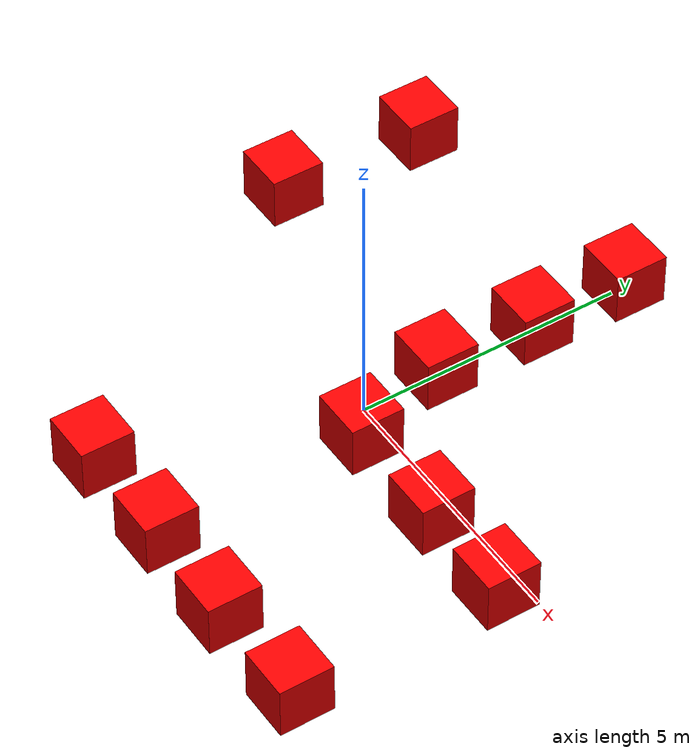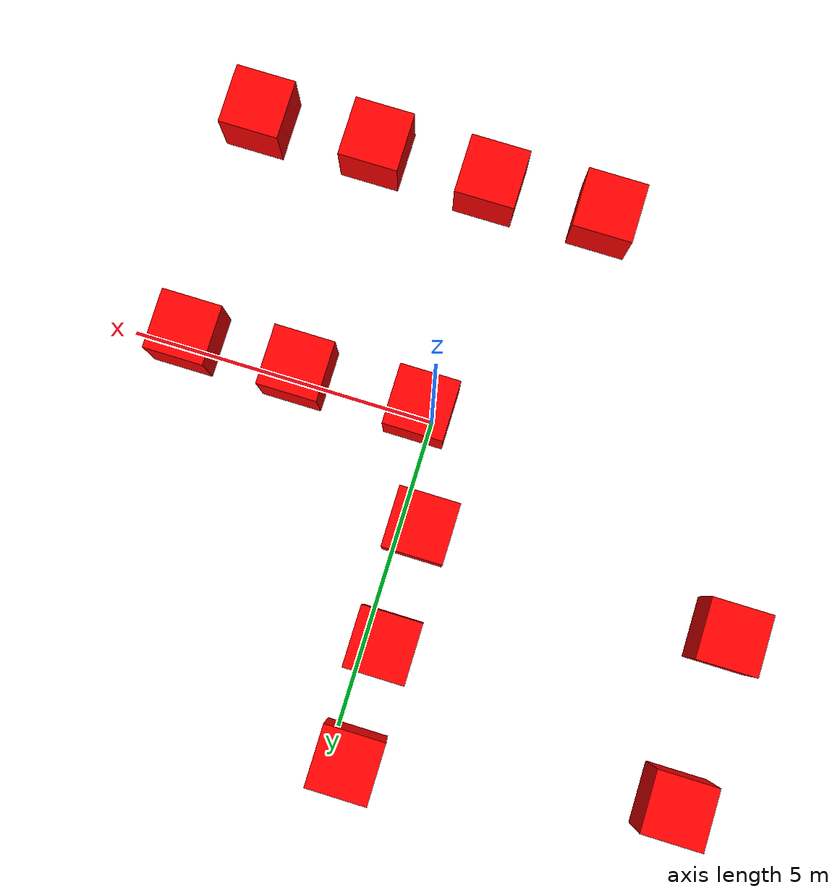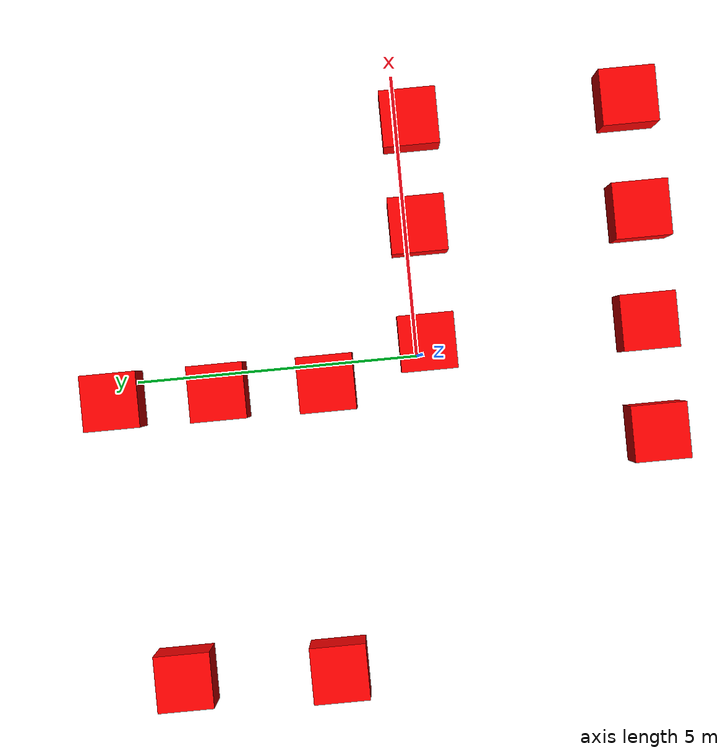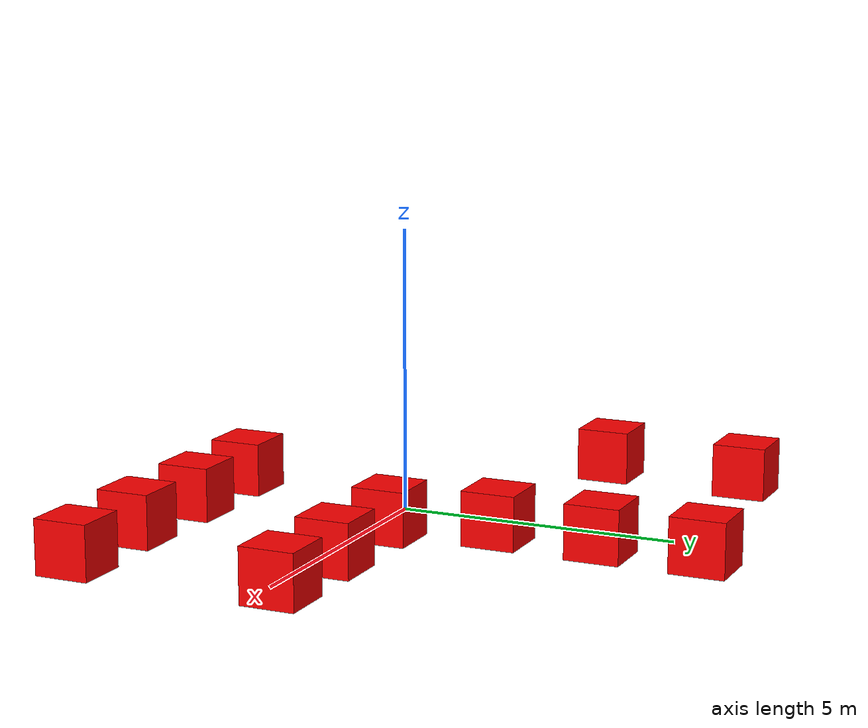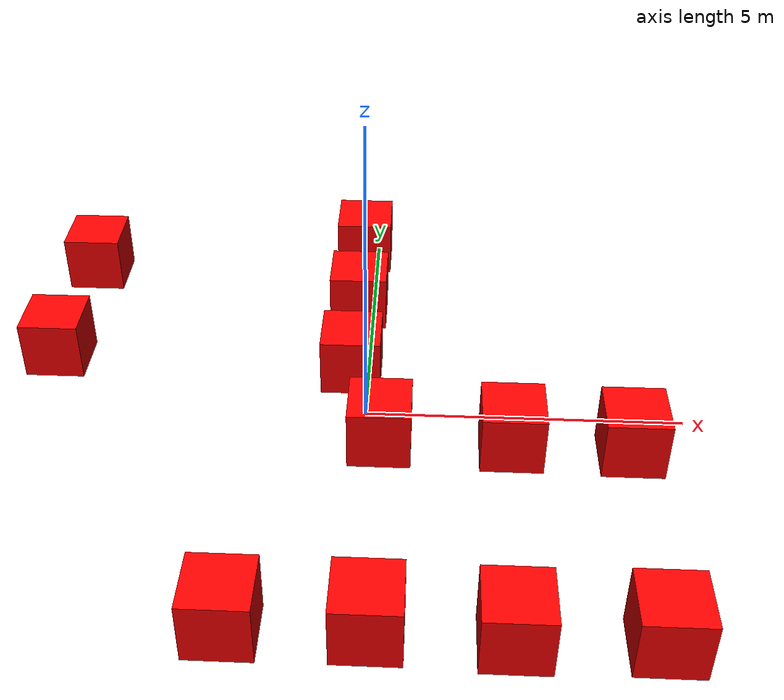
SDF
<?xml version='1.0'?>
<sdf version='1.7'>
  <model name='Turn'>
    <link name='link_0'>
      <inertial>
        <mass>1</mass>
        <inertia>
          <ixx>0.166667</ixx>
          <ixy>0</ixy>
          <ixz>0</ixz>
          <iyy>0.166667</iyy>
          <iyz>0</iyz>
          <izz>0.166667</izz>
        </inertia>
        <pose>1 0 0 0 -0 0</pose>
      </inertial>
      <pose>4.20524 -0.247986 0 0 -0 0</pose>
      <gravity>1</gravity>
      <self_collide>0</self_collide>
      <kinematic>0</kinematic>
      <enable_wind>0</enable_wind>
      <visual name='visual'>
        <pose>0 0 0 0 -0 0</pose>
        <geometry>
          <box>
            <size>1 1 1</size>
          </box>
        </geometry>
        <material>
          <lighting>1</lighting>
          <script>
            <uri>file://media/materials/scripts/gazebo.material</uri>
            <name>Gazebo/Grey</name>
          </script>
          <shader type='pixel'>
            <normal_map>__default__</normal_map>
          </shader>
          <ambient>1 0 0 1</ambient>
          <diffuse>1 0 0 1</diffuse>
          <specular>0 0 0 1</specular>
          <emissive>0 0 0 1</emissive>
        </material>
        <transparency>0</transparency>
        <cast_shadows>1</cast_shadows>
      </visual>
      <collision name='collision'>
        <laser_retro>0</laser_retro>
        <max_contacts>10</max_contacts>
        <pose>0 0 0 0 -0 0</pose>
        <geometry>
          <box>
            <size>1 1 1</size>
          </box>
        </geometry>
        <surface>
          <friction>
            <ode>
              <mu>1</mu>
              <mu2>1</mu2>
              <fdir1>0 0 0</fdir1>
              <slip1>0</slip1>
              <slip2>0</slip2>
            </ode>
            <torsional>
              <coefficient>1</coefficient>
              <patch_radius>0</patch_radius>
              <surface_radius>0</surface_radius>
              <use_patch_radius>1</use_patch_radius>
              <ode>
                <slip>0</slip>
              </ode>
            </torsional>
          </friction>
          <bounce>
            <restitution_coefficient>0</restitution_coefficient>
            <threshold>1e+06</threshold>
          </bounce>
          <contact>
            <collide_without_contact>0</collide_without_contact>
            <collide_without_contact_bitmask>1</collide_without_contact_bitmask>
            <collide_bitmask>1</collide_bitmask>
            <ode>
              <soft_cfm>0</soft_cfm>
              <soft_erp>0.2</soft_erp>
              <kp>1e+13</kp>
              <kd>1</kd>
              <max_vel>0.01</max_vel>
              <min_depth>0</min_depth>
            </ode>
            <bullet>
              <split_impulse>1</split_impulse>
              <split_impulse_penetration_threshold>-0.01</split_impulse_penetration_threshold>
              <soft_cfm>0</soft_cfm>
              <soft_erp>0.2</soft_erp>
              <kp>1e+13</kp>
              <kd>1</kd>
            </bullet>
          </contact>
        </surface>
      </collision>
    </link>
    <link name='link_0_clone'>
      <inertial>
        <mass>1</mass>
        <inertia>
          <ixx>0.166667</ixx>
          <ixy>0</ixy>
          <ixz>0</ixz>
          <iyy>0.166667</iyy>
          <iyz>0</iyz>
          <izz>0.166667</izz>
        </inertia>
        <pose>1 0 0 0 -0 0</pose>
      </inertial>
      <pose>2.31789 -0.219756 0 0 -0 0</pose>
      <gravity>1</gravity>
      <self_collide>0</self_collide>
      <kinematic>0</kinematic>
      <enable_wind>0</enable_wind>
      <visual name='visual'>
        <pose>0 0 0 0 -0 0</pose>
        <geometry>
          <box>
            <size>1 1 1</size>
          </box>
        </geometry>
        <material>
          <lighting>1</lighting>
          <script>
            <uri>file://media/materials/scripts/gazebo.material</uri>
            <name>Gazebo/Grey</name>
          </script>
          <shader type='pixel'>
            <normal_map>__default__</normal_map>
          </shader>
          <ambient>1 0 0 1</ambient>
          <diffuse>1 0 0 1</diffuse>
          <specular>0 0 0 1</specular>
          <emissive>0 0 0 1</emissive>
        </material>
        <transparency>0</transparency>
        <cast_shadows>1</cast_shadows>
      </visual>
      <collision name='collision'>
        <laser_retro>0</laser_retro>
        <max_contacts>10</max_contacts>
        <pose>0 0 0 0 -0 0</pose>
        <geometry>
          <box>
            <size>1 1 1</size>
          </box>
        </geometry>
        <surface>
          <friction>
            <ode>
              <mu>1</mu>
              <mu2>1</mu2>
              <fdir1>0 0 0</fdir1>
              <slip1>0</slip1>
              <slip2>0</slip2>
            </ode>
            <torsional>
              <coefficient>1</coefficient>
              <patch_radius>0</patch_radius>
              <surface_radius>0</surface_radius>
              <use_patch_radius>1</use_patch_radius>
              <ode>
                <slip>0</slip>
              </ode>
            </torsional>
          </friction>
          <bounce>
            <restitution_coefficient>0</restitution_coefficient>
            <threshold>1e+06</threshold>
          </bounce>
          <contact>
            <collide_without_contact>0</collide_without_contact>
            <collide_without_contact_bitmask>1</collide_without_contact_bitmask>
            <collide_bitmask>1</collide_bitmask>
            <ode>
              <soft_cfm>0</soft_cfm>
              <soft_erp>0.2</soft_erp>
              <kp>1e+13</kp>
              <kd>1</kd>
              <max_vel>0.01</max_vel>
              <min_depth>0</min_depth>
            </ode>
            <bullet>
              <split_impulse>1</split_impulse>
              <split_impulse_penetration_threshold>-0.01</split_impulse_penetration_threshold>
              <soft_cfm>0</soft_cfm>
              <soft_erp>0.2</soft_erp>
              <kp>1e+13</kp>
              <kd>1</kd>
            </bullet>
          </contact>
        </surface>
      </collision>
    </link>
    <link name='link_0_clone_clone'>
      <inertial>
        <mass>1</mass>
        <inertia>
          <ixx>0.166667</ixx>
          <ixy>0</ixy>
          <ixz>0</ixz>
          <iyy>0.166667</iyy>
          <iyz>0</iyz>
          <izz>0.166667</izz>
        </inertia>
        <pose>1 0 0 0 -0 0</pose>
      </inertial>
      <pose>0.23157 -0.197736 0 0 -0 0</pose>
      <gravity>1</gravity>
      <self_collide>0</self_collide>
      <kinematic>0</kinematic>
      <enable_wind>0</enable_wind>
      <visual name='visual'>
        <pose>0 0 0 0 -0 0</pose>
        <geometry>
          <box>
            <size>1 1 1</size>
          </box>
        </geometry>
        <material>
          <lighting>1</lighting>
          <script>
            <uri>file://media/materials/scripts/gazebo.material</uri>
            <name>Gazebo/Grey</name>
          </script>
          <shader type='pixel'>
            <normal_map>__default__</normal_map>
          </shader>
          <ambient>1 0 0 1</ambient>
          <diffuse>1 0 0 1</diffuse>
          <specular>0 0 0 1</specular>
          <emissive>0 0 0 1</emissive>
        </material>
        <transparency>0</transparency>
        <cast_shadows>1</cast_shadows>
      </visual>
      <collision name='collision'>
        <laser_retro>0</laser_retro>
        <max_contacts>10</max_contacts>
        <pose>0 0 0 0 -0 0</pose>
        <geometry>
          <box>
            <size>1 1 1</size>
          </box>
        </geometry>
        <surface>
          <friction>
            <ode>
              <mu>1</mu>
              <mu2>1</mu2>
              <fdir1>0 0 0</fdir1>
              <slip1>0</slip1>
              <slip2>0</slip2>
            </ode>
            <torsional>
              <coefficient>1</coefficient>
              <patch_radius>0</patch_radius>
              <surface_radius>0</surface_radius>
              <use_patch_radius>1</use_patch_radius>
              <ode>
                <slip>0</slip>
              </ode>
            </torsional>
          </friction>
          <bounce>
            <restitution_coefficient>0</restitution_coefficient>
            <threshold>1e+06</threshold>
          </bounce>
          <contact>
            <collide_without_contact>0</collide_without_contact>
            <collide_without_contact_bitmask>1</collide_without_contact_bitmask>
            <collide_bitmask>1</collide_bitmask>
            <ode>
              <soft_cfm>0</soft_cfm>
              <soft_erp>0.2</soft_erp>
              <kp>1e+13</kp>
              <kd>1</kd>
              <max_vel>0.01</max_vel>
              <min_depth>0</min_depth>
            </ode>
            <bullet>
              <split_impulse>1</split_impulse>
              <split_impulse_penetration_threshold>-0.01</split_impulse_penetration_threshold>
              <soft_cfm>0</soft_cfm>
              <soft_erp>0.2</soft_erp>
              <kp>1e+13</kp>
              <kd>1</kd>
            </bullet>
          </contact>
        </surface>
      </collision>
    </link>
    <link name='link_0_clone_clone_0'>
      <inertial>
        <mass>1</mass>
        <inertia>
          <ixx>0.166667</ixx>
          <ixy>0</ixy>
          <ixz>0</ixz>
          <iyy>0.166667</iyy>
          <iyz>0</iyz>
          <izz>0.166667</izz>
        </inertia>
        <pose>1 0 0 0 -0 0</pose>
      </inertial>
      <pose>-0.323 1.65117 0 0 -0 0</pose>
      <gravity>1</gravity>
      <self_collide>0</self_collide>
      <kinematic>0</kinematic>
      <enable_wind>0</enable_wind>
      <visual name='visual'>
        <pose>0 0 0 0 -0 0</pose>
        <geometry>
          <box>
            <size>1 1 1</size>
          </box>
        </geometry>
        <material>
          <lighting>1</lighting>
          <script>
            <uri>file://media/materials/scripts/gazebo.material</uri>
            <name>Gazebo/Grey</name>
          </script>
          <shader type='pixel'>
            <normal_map>__default__</normal_map>
          </shader>
          <ambient>1 0 0 1</ambient>
          <diffuse>1 0 0 1</diffuse>
          <specular>0 0 0 1</specular>
          <emissive>0 0 0 1</emissive>
        </material>
        <transparency>0</transparency>
        <cast_shadows>1</cast_shadows>
      </visual>
      <collision name='collision'>
        <laser_retro>0</laser_retro>
        <max_contacts>10</max_contacts>
        <pose>0 0 0 0 -0 0</pose>
        <geometry>
          <box>
            <size>1 1 1</size>
          </box>
        </geometry>
        <surface>
          <friction>
            <ode>
              <mu>1</mu>
              <mu2>1</mu2>
              <fdir1>0 0 0</fdir1>
              <slip1>0</slip1>
              <slip2>0</slip2>
            </ode>
            <torsional>
              <coefficient>1</coefficient>
              <patch_radius>0</patch_radius>
              <surface_radius>0</surface_radius>
              <use_patch_radius>1</use_patch_radius>
              <ode>
                <slip>0</slip>
              </ode>
            </torsional>
          </friction>
          <bounce>
            <restitution_coefficient>0</restitution_coefficient>
            <threshold>1e+06</threshold>
          </bounce>
          <contact>
            <collide_without_contact>0</collide_without_contact>
            <collide_without_contact_bitmask>1</collide_without_contact_bitmask>
            <collide_bitmask>1</collide_bitmask>
            <ode>
              <soft_cfm>0</soft_cfm>
              <soft_erp>0.2</soft_erp>
              <kp>1e+13</kp>
              <kd>1</kd>
              <max_vel>0.01</max_vel>
              <min_depth>0</min_depth>
            </ode>
            <bullet>
              <split_impulse>1</split_impulse>
              <split_impulse_penetration_threshold>-0.01</split_impulse_penetration_threshold>
              <soft_cfm>0</soft_cfm>
              <soft_erp>0.2</soft_erp>
              <kp>1e+13</kp>
              <kd>1</kd>
            </bullet>
          </contact>
        </surface>
      </collision>
    </link>
    <link name='link_0_clone_clone_1'>
      <inertial>
        <mass>1</mass>
        <inertia>
          <ixx>0.166667</ixx>
          <ixy>0</ixy>
          <ixz>0</ixz>
          <iyy>0.166667</iyy>
          <iyz>0</iyz>
          <izz>0.166667</izz>
        </inertia>
        <pose>0 -2 0 0 -0 0</pose>
      </inertial>
      <pose>4.21959 -4.13243 0 0 -0 0</pose>
      <gravity>1</gravity>
      <self_collide>0</self_collide>
      <kinematic>0</kinematic>
      <enable_wind>0</enable_wind>
      <visual name='visual'>
        <pose>0 0 0 0 -0 0</pose>
        <geometry>
          <box>
            <size>1 1 1</size>
          </box>
        </geometry>
        <material>
          <lighting>1</lighting>
          <script>
            <uri>file://media/materials/scripts/gazebo.material</uri>
            <name>Gazebo/Grey</name>
          </script>
          <shader type='pixel'>
            <normal_map>__default__</normal_map>
          </shader>
          <ambient>1 0 0 1</ambient>
          <diffuse>1 0 0 1</diffuse>
          <specular>0 0 0 1</specular>
          <emissive>0 0 0 1</emissive>
        </material>
        <transparency>0</transparency>
        <cast_shadows>1</cast_shadows>
      </visual>
      <collision name='collision'>
        <laser_retro>0</laser_retro>
        <max_contacts>10</max_contacts>
        <pose>0 0 0 0 -0 0</pose>
        <geometry>
          <box>
            <size>1 1 1</size>
          </box>
        </geometry>
        <surface>
          <friction>
            <ode>
              <mu>1</mu>
              <mu2>1</mu2>
              <fdir1>0 0 0</fdir1>
              <slip1>0</slip1>
              <slip2>0</slip2>
            </ode>
            <torsional>
              <coefficient>1</coefficient>
              <patch_radius>0</patch_radius>
              <surface_radius>0</surface_radius>
              <use_patch_radius>1</use_patch_radius>
              <ode>
                <slip>0</slip>
              </ode>
            </torsional>
          </friction>
          <bounce>
            <restitution_coefficient>0</restitution_coefficient>
            <threshold>1e+06</threshold>
          </bounce>
          <contact>
            <collide_without_contact>0</collide_without_contact>
            <collide_without_contact_bitmask>1</collide_without_contact_bitmask>
            <collide_bitmask>1</collide_bitmask>
            <ode>
              <soft_cfm>0</soft_cfm>
              <soft_erp>0.2</soft_erp>
              <kp>1e+13</kp>
              <kd>1</kd>
              <max_vel>0.01</max_vel>
              <min_depth>0</min_depth>
            </ode>
            <bullet>
              <split_impulse>1</split_impulse>
              <split_impulse_penetration_threshold>-0.01</split_impulse_penetration_threshold>
              <soft_cfm>0</soft_cfm>
              <soft_erp>0.2</soft_erp>
              <kp>1e+13</kp>
              <kd>1</kd>
            </bullet>
          </contact>
        </surface>
      </collision>
    </link>
    <link name='link_0_clone_clone_2'>
      <inertial>
        <mass>1</mass>
        <inertia>
          <ixx>0.166667</ixx>
          <ixy>0</ixy>
          <ixz>0</ixz>
          <iyy>0.166667</iyy>
          <iyz>0</iyz>
          <izz>0.166667</izz>
        </inertia>
        <pose>1 0 0 0 -0 0</pose>
      </inertial>
      <pose>2.20828 -4.17402 0 0 -0 0</pose>
      <gravity>1</gravity>
      <self_collide>0</self_collide>
      <kinematic>0</kinematic>
      <enable_wind>0</enable_wind>
      <visual name='visual'>
        <pose>0 0 0 0 -0 0</pose>
        <geometry>
          <box>
            <size>1 1 1</size>
          </box>
        </geometry>
        <material>
          <lighting>1</lighting>
          <script>
            <uri>file://media/materials/scripts/gazebo.material</uri>
            <name>Gazebo/Grey</name>
          </script>
          <shader type='pixel'>
            <normal_map>__default__</normal_map>
          </shader>
          <ambient>1 0 0 1</ambient>
          <diffuse>1 0 0 1</diffuse>
          <specular>0 0 0 1</specular>
          <emissive>0 0 0 1</emissive>
        </material>
        <transparency>0</transparency>
        <cast_shadows>1</cast_shadows>
      </visual>
      <collision name='collision'>
        <laser_retro>0</laser_retro>
        <max_contacts>10</max_contacts>
        <pose>0 0 0 0 -0 0</pose>
        <geometry>
          <box>
            <size>1 1 1</size>
          </box>
        </geometry>
        <surface>
          <friction>
            <ode>
              <mu>1</mu>
              <mu2>1</mu2>
              <fdir1>0 0 0</fdir1>
              <slip1>0</slip1>
              <slip2>0</slip2>
            </ode>
            <torsional>
              <coefficient>1</coefficient>
              <patch_radius>0</patch_radius>
              <surface_radius>0</surface_radius>
              <use_patch_radius>1</use_patch_radius>
              <ode>
                <slip>0</slip>
              </ode>
            </torsional>
          </friction>
          <bounce>
            <restitution_coefficient>0</restitution_coefficient>
            <threshold>1e+06</threshold>
          </bounce>
          <contact>
            <collide_without_contact>0</collide_without_contact>
            <collide_without_contact_bitmask>1</collide_without_contact_bitmask>
            <collide_bitmask>1</collide_bitmask>
            <ode>
              <soft_cfm>0</soft_cfm>
              <soft_erp>0.2</soft_erp>
              <kp>1e+13</kp>
              <kd>1</kd>
              <max_vel>0.01</max_vel>
              <min_depth>0</min_depth>
            </ode>
            <bullet>
              <split_impulse>1</split_impulse>
              <split_impulse_penetration_threshold>-0.01</split_impulse_penetration_threshold>
              <soft_cfm>0</soft_cfm>
              <soft_erp>0.2</soft_erp>
              <kp>1e+13</kp>
              <kd>1</kd>
            </bullet>
          </contact>
        </surface>
      </collision>
    </link>
    <link name='link_0_clone_clone_3'>
      <inertial>
        <mass>1</mass>
        <inertia>
          <ixx>0.166667</ixx>
          <ixy>0</ixy>
          <ixz>0</ixz>
          <iyy>0.166667</iyy>
          <iyz>0</iyz>
          <izz>0.166667</izz>
        </inertia>
        <pose>1 0 0 0 -0 0</pose>
      </inertial>
      <pose>0.23204 -4.12463 0 0 -0 0</pose>
      <gravity>1</gravity>
      <self_collide>0</self_collide>
      <kinematic>0</kinematic>
      <enable_wind>0</enable_wind>
      <visual name='visual'>
        <pose>0 0 0 0 -0 0</pose>
        <geometry>
          <box>
            <size>1 1 1</size>
          </box>
        </geometry>
        <material>
          <lighting>1</lighting>
          <script>
            <uri>file://media/materials/scripts/gazebo.material</uri>
            <name>Gazebo/Grey</name>
          </script>
          <shader type='pixel'>
            <normal_map>__default__</normal_map>
          </shader>
          <ambient>1 0 0 1</ambient>
          <diffuse>1 0 0 1</diffuse>
          <specular>0 0 0 1</specular>
          <emissive>0 0 0 1</emissive>
        </material>
        <transparency>0</transparency>
        <cast_shadows>1</cast_shadows>
      </visual>
      <collision name='collision'>
        <laser_retro>0</laser_retro>
        <max_contacts>10</max_contacts>
        <pose>0 0 0 0 -0 0</pose>
        <geometry>
          <box>
            <size>1 1 1</size>
          </box>
        </geometry>
        <surface>
          <friction>
            <ode>
              <mu>1</mu>
              <mu2>1</mu2>
              <fdir1>0 0 0</fdir1>
              <slip1>0</slip1>
              <slip2>0</slip2>
            </ode>
            <torsional>
              <coefficient>1</coefficient>
              <patch_radius>0</patch_radius>
              <surface_radius>0</surface_radius>
              <use_patch_radius>1</use_patch_radius>
              <ode>
                <slip>0</slip>
              </ode>
            </torsional>
          </friction>
          <bounce>
            <restitution_coefficient>0</restitution_coefficient>
            <threshold>1e+06</threshold>
          </bounce>
          <contact>
            <collide_without_contact>0</collide_without_contact>
            <collide_without_contact_bitmask>1</collide_without_contact_bitmask>
            <collide_bitmask>1</collide_bitmask>
            <ode>
              <soft_cfm>0</soft_cfm>
              <soft_erp>0.2</soft_erp>
              <kp>1e+13</kp>
              <kd>1</kd>
              <max_vel>0.01</max_vel>
              <min_depth>0</min_depth>
            </ode>
            <bullet>
              <split_impulse>1</split_impulse>
              <split_impulse_penetration_threshold>-0.01</split_impulse_penetration_threshold>
              <soft_cfm>0</soft_cfm>
              <soft_erp>0.2</soft_erp>
              <kp>1e+13</kp>
              <kd>1</kd>
            </bullet>
          </contact>
        </surface>
      </collision>
    </link>
    <link name='link_0_clone_clone_4'>
      <inertial>
        <mass>1</mass>
        <inertia>
          <ixx>0.166667</ixx>
          <ixy>0</ixy>
          <ixz>0</ixz>
          <iyy>0.166667</iyy>
          <iyz>0</iyz>
          <izz>0.166667</izz>
        </inertia>
        <pose>1 0 0 0 -0 0</pose>
      </inertial>
      <pose>-1.73307 -4.14033 0 0 -0 0</pose>
      <gravity>1</gravity>
      <self_collide>0</self_collide>
      <kinematic>0</kinematic>
      <enable_wind>0</enable_wind>
      <visual name='visual'>
        <pose>0 0 0 0 -0 0</pose>
        <geometry>
          <box>
            <size>1 1 1</size>
          </box>
        </geometry>
        <material>
          <lighting>1</lighting>
          <script>
            <uri>file://media/materials/scripts/gazebo.material</uri>
            <name>Gazebo/Grey</name>
          </script>
          <shader type='pixel'>
            <normal_map>__default__</normal_map>
          </shader>
          <ambient>1 0 0 1</ambient>
          <diffuse>1 0 0 1</diffuse>
          <specular>0 0 0 1</specular>
          <emissive>0 0 0 1</emissive>
        </material>
        <transparency>0</transparency>
        <cast_shadows>1</cast_shadows>
      </visual>
      <collision name='collision'>
        <laser_retro>0</laser_retro>
        <max_contacts>10</max_contacts>
        <pose>0 0 0 0 -0 0</pose>
        <geometry>
          <box>
            <size>1 1 1</size>
          </box>
        </geometry>
        <surface>
          <friction>
            <ode>
              <mu>1</mu>
              <mu2>1</mu2>
              <fdir1>0 0 0</fdir1>
              <slip1>0</slip1>
              <slip2>0</slip2>
            </ode>
            <torsional>
              <coefficient>1</coefficient>
              <patch_radius>0</patch_radius>
              <surface_radius>0</surface_radius>
              <use_patch_radius>1</use_patch_radius>
              <ode>
                <slip>0</slip>
              </ode>
            </torsional>
          </friction>
          <bounce>
            <restitution_coefficient>0</restitution_coefficient>
            <threshold>1e+06</threshold>
          </bounce>
          <contact>
            <collide_without_contact>0</collide_without_contact>
            <collide_without_contact_bitmask>1</collide_without_contact_bitmask>
            <collide_bitmask>1</collide_bitmask>
            <ode>
              <soft_cfm>0</soft_cfm>
              <soft_erp>0.2</soft_erp>
              <kp>1e+13</kp>
              <kd>1</kd>
              <max_vel>0.01</max_vel>
              <min_depth>0</min_depth>
            </ode>
            <bullet>
              <split_impulse>1</split_impulse>
              <split_impulse_penetration_threshold>-0.01</split_impulse_penetration_threshold>
              <soft_cfm>0</soft_cfm>
              <soft_erp>0.2</soft_erp>
              <kp>1e+13</kp>
              <kd>1</kd>
            </bullet>
          </contact>
        </surface>
      </collision>
    </link>
    <link name='link_0_clone_clone_5'>
      <inertial>
        <mass>1</mass>
        <inertia>
          <ixx>0.166667</ixx>
          <ixy>0</ixy>
          <ixz>0</ixz>
          <iyy>0.166667</iyy>
          <iyz>0</iyz>
          <izz>0.166667</izz>
        </inertia>
        <pose>1 0 0 0 -0 0</pose>
      </inertial>
      <pose>-5.44044 1.88808 0 0 -0 0</pose>
      <gravity>1</gravity>
      <self_collide>0</self_collide>
      <kinematic>0</kinematic>
      <enable_wind>0</enable_wind>
      <visual name='visual'>
        <pose>0 0 0 0 -0 0</pose>
        <geometry>
          <box>
            <size>1 1 1</size>
          </box>
        </geometry>
        <material>
          <lighting>1</lighting>
          <script>
            <uri>file://media/materials/scripts/gazebo.material</uri>
            <name>Gazebo/Grey</name>
          </script>
          <shader type='pixel'>
            <normal_map>__default__</normal_map>
          </shader>
          <ambient>1 0 0 1</ambient>
          <diffuse>1 0 0 1</diffuse>
          <specular>0 0 0 1</specular>
          <emissive>0 0 0 1</emissive>
        </material>
        <transparency>0</transparency>
        <cast_shadows>1</cast_shadows>
      </visual>
      <collision name='collision'>
        <laser_retro>0</laser_retro>
        <max_contacts>10</max_contacts>
        <pose>0 0 0 0 -0 0</pose>
        <geometry>
          <box>
            <size>1 1 1</size>
          </box>
        </geometry>
        <surface>
          <friction>
            <ode>
              <mu>1</mu>
              <mu2>1</mu2>
              <fdir1>0 0 0</fdir1>
              <slip1>0</slip1>
              <slip2>0</slip2>
            </ode>
            <torsional>
              <coefficient>1</coefficient>
              <patch_radius>0</patch_radius>
              <surface_radius>0</surface_radius>
              <use_patch_radius>1</use_patch_radius>
              <ode>
                <slip>0</slip>
              </ode>
            </torsional>
          </friction>
          <bounce>
            <restitution_coefficient>0</restitution_coefficient>
            <threshold>1e+06</threshold>
          </bounce>
          <contact>
            <collide_without_contact>0</collide_without_contact>
            <collide_without_contact_bitmask>1</collide_without_contact_bitmask>
            <collide_bitmask>1</collide_bitmask>
            <ode>
              <soft_cfm>0</soft_cfm>
              <soft_erp>0.2</soft_erp>
              <kp>1e+13</kp>
              <kd>1</kd>
              <max_vel>0.01</max_vel>
              <min_depth>0</min_depth>
            </ode>
            <bullet>
              <split_impulse>1</split_impulse>
              <split_impulse_penetration_threshold>-0.01</split_impulse_penetration_threshold>
              <soft_cfm>0</soft_cfm>
              <soft_erp>0.2</soft_erp>
              <kp>1e+13</kp>
              <kd>1</kd>
            </bullet>
          </contact>
        </surface>
      </collision>
    </link>
    <link name='link_0_clone_clone_6'>
      <inertial>
        <mass>1</mass>
        <inertia>
          <ixx>0.166667</ixx>
          <ixy>0</ixy>
          <ixz>0</ixz>
          <iyy>0.166667</iyy>
          <iyz>0</iyz>
          <izz>0.166667</izz>
        </inertia>
        <pose>1 0 0 0 -0 0</pose>
      </inertial>
      <pose>-0.300176 3.586 0 0 -0 0</pose>
      <gravity>1</gravity>
      <self_collide>0</self_collide>
      <kinematic>0</kinematic>
      <enable_wind>0</enable_wind>
      <visual name='visual'>
        <pose>0 0 0 0 -0 0</pose>
        <geometry>
          <box>
            <size>1 1 1</size>
          </box>
        </geometry>
        <material>
          <lighting>1</lighting>
          <script>
            <uri>file://media/materials/scripts/gazebo.material</uri>
            <name>Gazebo/Grey</name>
          </script>
          <shader type='pixel'>
            <normal_map>__default__</normal_map>
          </shader>
          <ambient>1 0 0 1</ambient>
          <diffuse>1 0 0 1</diffuse>
          <specular>0 0 0 1</specular>
          <emissive>0 0 0 1</emissive>
        </material>
        <transparency>0</transparency>
        <cast_shadows>1</cast_shadows>
      </visual>
      <collision name='collision'>
        <laser_retro>0</laser_retro>
        <max_contacts>10</max_contacts>
        <pose>0 0 0 0 -0 0</pose>
        <geometry>
          <box>
            <size>1 1 1</size>
          </box>
        </geometry>
        <surface>
          <friction>
            <ode>
              <mu>1</mu>
              <mu2>1</mu2>
              <fdir1>0 0 0</fdir1>
              <slip1>0</slip1>
              <slip2>0</slip2>
            </ode>
            <torsional>
              <coefficient>1</coefficient>
              <patch_radius>0</patch_radius>
              <surface_radius>0</surface_radius>
              <use_patch_radius>1</use_patch_radius>
              <ode>
                <slip>0</slip>
              </ode>
            </torsional>
          </friction>
          <bounce>
            <restitution_coefficient>0</restitution_coefficient>
            <threshold>1e+06</threshold>
          </bounce>
          <contact>
            <collide_without_contact>0</collide_without_contact>
            <collide_without_contact_bitmask>1</collide_without_contact_bitmask>
            <collide_bitmask>1</collide_bitmask>
            <ode>
              <soft_cfm>0</soft_cfm>
              <soft_erp>0.2</soft_erp>
              <kp>1e+13</kp>
              <kd>1</kd>
              <max_vel>0.01</max_vel>
              <min_depth>0</min_depth>
            </ode>
            <bullet>
              <split_impulse>1</split_impulse>
              <split_impulse_penetration_threshold>-0.01</split_impulse_penetration_threshold>
              <soft_cfm>0</soft_cfm>
              <soft_erp>0.2</soft_erp>
              <kp>1e+13</kp>
              <kd>1</kd>
            </bullet>
          </contact>
        </surface>
      </collision>
    </link>
    <link name='link_0_clone_clone_7'>
      <inertial>
        <mass>1</mass>
        <inertia>
          <ixx>0.166667</ixx>
          <ixy>0</ixy>
          <ixz>0</ixz>
          <iyy>0.166667</iyy>
          <iyz>0</iyz>
          <izz>0.166667</izz>
        </inertia>
        <pose>1 0 0 0 -0 0</pose>
      </inertial>
      <pose>-0.287345 5.47331 0 0 -0 0</pose>
      <gravity>1</gravity>
      <self_collide>0</self_collide>
      <kinematic>0</kinematic>
      <enable_wind>0</enable_wind>
      <visual name='visual'>
        <pose>0 0 0 0 -0 0</pose>
        <geometry>
          <box>
            <size>1 1 1</size>
          </box>
        </geometry>
        <material>
          <lighting>1</lighting>
          <script>
            <uri>file://media/materials/scripts/gazebo.material</uri>
            <name>Gazebo/Grey</name>
          </script>
          <shader type='pixel'>
            <normal_map>__default__</normal_map>
          </shader>
          <ambient>1 0 0 1</ambient>
          <diffuse>1 0 0 1</diffuse>
          <specular>0 0 0 1</specular>
          <emissive>0 0 0 1</emissive>
        </material>
        <transparency>0</transparency>
        <cast_shadows>1</cast_shadows>
      </visual>
      <collision name='collision'>
        <laser_retro>0</laser_retro>
        <max_contacts>10</max_contacts>
        <pose>0 0 0 0 -0 0</pose>
        <geometry>
          <box>
            <size>1 1 1</size>
          </box>
        </geometry>
        <surface>
          <friction>
            <ode>
              <mu>1</mu>
              <mu2>1</mu2>
              <fdir1>0 0 0</fdir1>
              <slip1>0</slip1>
              <slip2>0</slip2>
            </ode>
            <torsional>
              <coefficient>1</coefficient>
              <patch_radius>0</patch_radius>
              <surface_radius>0</surface_radius>
              <use_patch_radius>1</use_patch_radius>
              <ode>
                <slip>0</slip>
              </ode>
            </torsional>
          </friction>
          <bounce>
            <restitution_coefficient>0</restitution_coefficient>
            <threshold>1e+06</threshold>
          </bounce>
          <contact>
            <collide_without_contact>0</collide_without_contact>
            <collide_without_contact_bitmask>1</collide_without_contact_bitmask>
            <collide_bitmask>1</collide_bitmask>
            <ode>
              <soft_cfm>0</soft_cfm>
              <soft_erp>0.2</soft_erp>
              <kp>1e+13</kp>
              <kd>1</kd>
              <max_vel>0.01</max_vel>
              <min_depth>0</min_depth>
            </ode>
            <bullet>
              <split_impulse>1</split_impulse>
              <split_impulse_penetration_threshold>-0.01</split_impulse_penetration_threshold>
              <soft_cfm>0</soft_cfm>
              <soft_erp>0.2</soft_erp>
              <kp>1e+13</kp>
              <kd>1</kd>
            </bullet>
          </contact>
        </surface>
      </collision>
    </link>
    <link name='link_0_clone_clone_8'>
      <inertial>
        <mass>1</mass>
        <inertia>
          <ixx>0.166667</ixx>
          <ixy>0</ixy>
          <ixz>0</ixz>
          <iyy>0.166667</iyy>
          <iyz>0</iyz>
          <izz>0.166667</izz>
        </inertia>
        <pose>1 0 0 0 -0 0</pose>
      </inertial>
      <pose>-5.33057 4.63832 0 0 -0 0</pose>
      <gravity>1</gravity>
      <self_collide>0</self_collide>
      <kinematic>0</kinematic>
      <enable_wind>0</enable_wind>
      <visual name='visual'>
        <pose>0 0 0 0 -0 0</pose>
        <geometry>
          <box>
            <size>1 1 1</size>
          </box>
        </geometry>
        <material>
          <lighting>1</lighting>
          <script>
            <uri>file://media/materials/scripts/gazebo.material</uri>
            <name>Gazebo/Grey</name>
          </script>
          <shader type='pixel'>
            <normal_map>__default__</normal_map>
          </shader>
          <ambient>1 0 0 1</ambient>
          <diffuse>1 0 0 1</diffuse>
          <specular>0 0 0 1</specular>
          <emissive>0 0 0 1</emissive>
        </material>
        <transparency>0</transparency>
        <cast_shadows>1</cast_shadows>
      </visual>
      <collision name='collision'>
        <laser_retro>0</laser_retro>
        <max_contacts>10</max_contacts>
        <pose>0 0 0 0 -0 0</pose>
        <geometry>
          <box>
            <size>1 1 1</size>
          </box>
        </geometry>
        <surface>
          <friction>
            <ode>
              <mu>1</mu>
              <mu2>1</mu2>
              <fdir1>0 0 0</fdir1>
              <slip1>0</slip1>
              <slip2>0</slip2>
            </ode>
            <torsional>
              <coefficient>1</coefficient>
              <patch_radius>0</patch_radius>
              <surface_radius>0</surface_radius>
              <use_patch_radius>1</use_patch_radius>
              <ode>
                <slip>0</slip>
              </ode>
            </torsional>
          </friction>
          <bounce>
            <restitution_coefficient>0</restitution_coefficient>
            <threshold>1e+06</threshold>
          </bounce>
          <contact>
            <collide_without_contact>0</collide_without_contact>
            <collide_without_contact_bitmask>1</collide_without_contact_bitmask>
            <collide_bitmask>1</collide_bitmask>
            <ode>
              <soft_cfm>0</soft_cfm>
              <soft_erp>0.2</soft_erp>
              <kp>1e+13</kp>
              <kd>1</kd>
              <max_vel>0.01</max_vel>
              <min_depth>0</min_depth>
            </ode>
            <bullet>
              <split_impulse>1</split_impulse>
              <split_impulse_penetration_threshold>-0.01</split_impulse_penetration_threshold>
              <soft_cfm>0</soft_cfm>
              <soft_erp>0.2</soft_erp>
              <kp>1e+13</kp>
              <kd>1</kd>
            </bullet>
          </contact>
        </surface>
      </collision>
    </link>
    <static>0</static>
    <allow_auto_disable>1</allow_auto_disable>
  </model>
</sdf>
